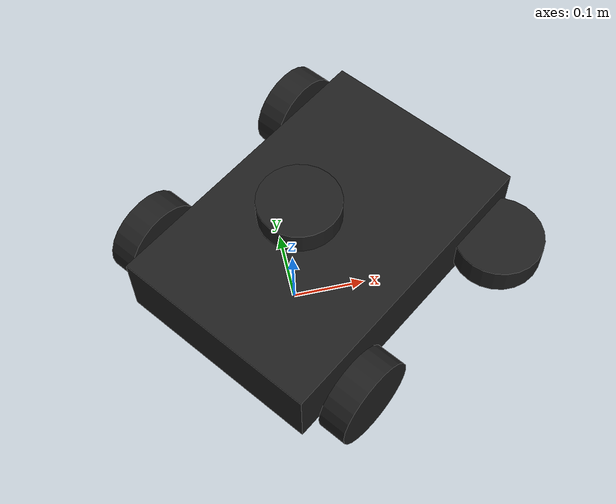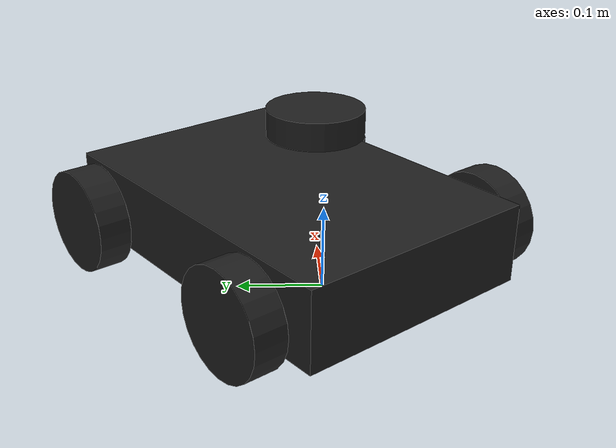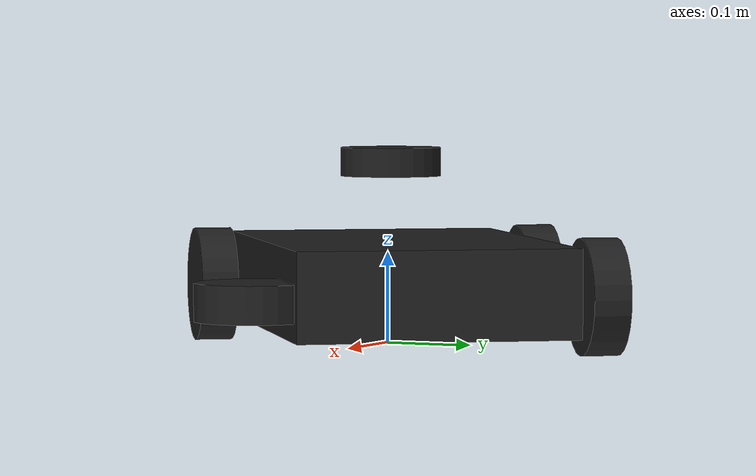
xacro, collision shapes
<?xml version="1.0" ?>
<robot name="turtlebot3_burger" xmlns:xacro="http://ros.org/wiki/xacro">
  <xacro:include filename="$(find turtlebot3_description)/urdf/common_properties.xacro"/>
  <xacro:include filename="$(find turtlebot3_description)/urdf/turtlebot3_burger.gazebo.xacro"/>

  <link name="base_footprint"/>

  <joint name="base_joint" type="fixed">
    <parent link="base_footprint"/>
    <child link="base_link"/>
    <origin xyz="0.0 0.0 0.035" rpy="0 0 -2.5"/>
  </joint>

  <link name="base_link">
    <visual>
      <origin xyz="-0.064 0 0.035" rpy="0 0 0"/>
      <geometry>
        <mesh filename="package://turtlebot3_description/meshes/bases/burger_base.stl" scale="0.0030985915493 0.00217391304348 0.001"/>
      </geometry>
      <material name="light_black"/>
    </visual>

    <collision>
      <origin xyz="-0.064 0 0.035" rpy="0 0 0"/>
      <geometry>
        <box size="0.44 0.3 0.095"/>
      </geometry>
    </collision>

    <inertial>
      <origin xyz="0 0 0" rpy="0 0 0"/>
      <mass value="8.2573504e-01"/>
      <inertia ixx="2.2124416e-03" ixy="-1.2294101e-05" ixz="3.4938785e-05"
               iyy="2.1193702e-03" iyz="-5.0120904e-06"
               izz="2.0064271e-03" />
    </inertial>
  </link>

  <joint name="wheel_left_joint" type="continuous">
    <parent link="base_link"/>
    <child link="wheel_left_link"/>
    <origin xyz="-0.217 0.184 0.0275" rpy="-1.57 0 0"/>
    <axis xyz="0 0 1"/>
  </joint>

  <link name="wheel_left_link">
    <visual>
      <origin xyz="0 0 0" rpy="1.57 0 0"/>
      <geometry>
        <mesh filename="package://turtlebot3_description/meshes/wheels/left_tire.stl" scale="0.0015625 0.0015625 0.0015625"/>
      </geometry>
      <material name="dark"/>
    </visual>

    <collision>
      <origin xyz="0 0 0" rpy="1.57 0 0"/>
      <geometry>
        <cylinder length="0.04" radius="0.0625"/>
      </geometry>
    </collision>

    <inertial>
      <origin xyz="0 0 0" />
      <mass value="2.8498940e-02" />
      <inertia ixx="1.1175580e-05" ixy="-4.2369783e-11" ixz="-5.9381719e-09"
               iyy="1.1192413e-05" iyz="-1.4400107e-11"
               izz="2.0712558e-05" />
      </inertial>
  </link>

  <joint name="wheel_right_joint" type="continuous">
    <parent link="base_link"/>
    <child link="wheel_right_link"/>
    <origin xyz="-0.217 -0.184 0.0275" rpy="-1.57 0 0"/>
    <axis xyz="0 0 1"/>
  </joint>

  <link name="wheel_right_link">
    <visual>
      <origin xyz="0 0 0" rpy="1.57 0 0"/>
      <geometry>
        <mesh filename="package://turtlebot3_description/meshes/wheels/right_tire.stl" scale="0.0015625 0.0015625 0.0015625"/>
      </geometry>
      <material name="dark"/>
    </visual>

    <collision>
      <origin xyz="0 0 0" rpy="0 0 0"/>
      <geometry>
        <cylinder length="0.04" radius="0.0625"/>
      </geometry>
    </collision>

    <inertial>
      <origin xyz="0 0 0" />
      <mass value="2.8498940e-02" />
      <inertia ixx="1.1175580e-05" ixy="-4.2369783e-11" ixz="-5.9381719e-09"
               iyy="1.1192413e-05" iyz="-1.4400107e-11"
               izz="2.0712558e-05" />
      </inertial>
  </link>

  <joint name="caster_back_right_joint" type="continuous">
    <parent link="base_link"/>
    <child link="caster_back_right_link"/>
    <origin xyz="0.078 0.184 0.0275" rpy="-1.57 0 0"/>
    <axis xyz="0 0 1"/>
  </joint>

  <link name="caster_back_right_link">
    <visual>
      <origin xyz="0 0 0" rpy="1.57 0 0"/>
      <geometry>
        <mesh filename="package://turtlebot3_description/meshes/wheels/right_tire.stl" scale="0.0015625 0.0015625 0.0015625"/>
      </geometry>
      <material name="dark"/>
    </visual>

    <collision>
      <origin xyz="0 0 0" rpy="0 0 0"/>
      <geometry>
        <cylinder length="0.04" radius="0.0625"/>
      </geometry>
    </collision>

    <inertial>
      <origin xyz="0 0 0" />
      <mass value="2.8498940e-02" />
      <inertia ixx="1.1175580e-05" ixy="-4.2369783e-11" ixz="-5.9381719e-09"
               iyy="1.1192413e-05" iyz="-1.4400107e-11"
               izz="2.0712558e-05" />
      </inertial>
  </link>

  <joint name="caster_back_left_joint" type="continuous">
    <parent link="base_link"/>
    <child link="caster_back_left_link"/>
    <origin xyz="0.078 -0.184 0.0275" rpy="-1.57 0 0"/>
    <axis xyz="0 0 1"/>
  </joint>

  <link name="caster_back_left_link">
    <visual>
      <origin xyz="0 0 0" rpy="-1.57 0 0"/>
      <geometry>
        <mesh filename="package://turtlebot3_description/meshes/wheels/left_tire.stl" scale="0.0015625 0.0015625 0.0015625"/>
      </geometry>
      <material name="dark"/>
    </visual>

    <collision>
      <origin xyz="0 0 0" rpy="0 0 0"/>
      <geometry>
        <cylinder length="0.04" radius="0.0625"/>
      </geometry>
    </collision>

    <inertial>
      <origin xyz="0 0 0" />
      <mass value="2.8498940e-02" />
      <inertia ixx="1.1175580e-05" ixy="-4.2369783e-11" ixz="-5.9381719e-09"
               iyy="1.1192413e-05" iyz="-1.4400107e-11"
               izz="2.0712558e-05" />
      </inertial>
  </link>

  <joint name="imu_joint" type="fixed">
    <parent link="base_link"/>
    <child link="imu_link"/>
    <origin xyz="-0.032 0 0.068" rpy="0 0 0"/>
  </joint>

  <link name="imu_link"/>

  <joint name="scan_joint" type="fixed">
    <parent link="base_link"/>
    <child link="base_scan"/>
    <origin xyz="-0.032 0 0.172" rpy="0 0 0"/>
  </joint>

  <link name="base_scan">
    <visual>
      <origin xyz="0 0 0.0" rpy="0 0 0"/>
      <geometry>
        <mesh filename="package://turtlebot3_description/meshes/sensors/lds.stl" scale="0.001 0.001 0.001"/>
      </geometry>
      <material name="dark"/>
    </visual>

    <collision>
      <origin xyz="0.015 0 -0.0065" rpy="0 0 0"/>
      <geometry>
        <cylinder length="0.0315" radius="0.055"/>
      </geometry>
    </collision>

    <inertial>
      <mass value="0.114" />
      <origin xyz="0 0 0" />
      <inertia ixx="0.001" ixy="0.0" ixz="0.0"
               iyy="0.001" iyz="0.0"
               izz="0.001" />
    </inertial>
  </link>

</robot>
